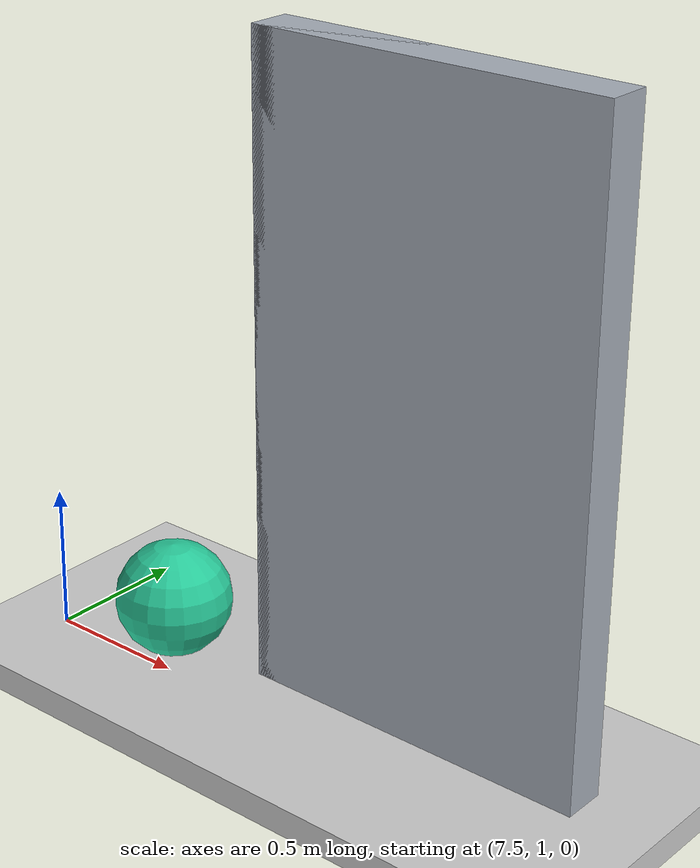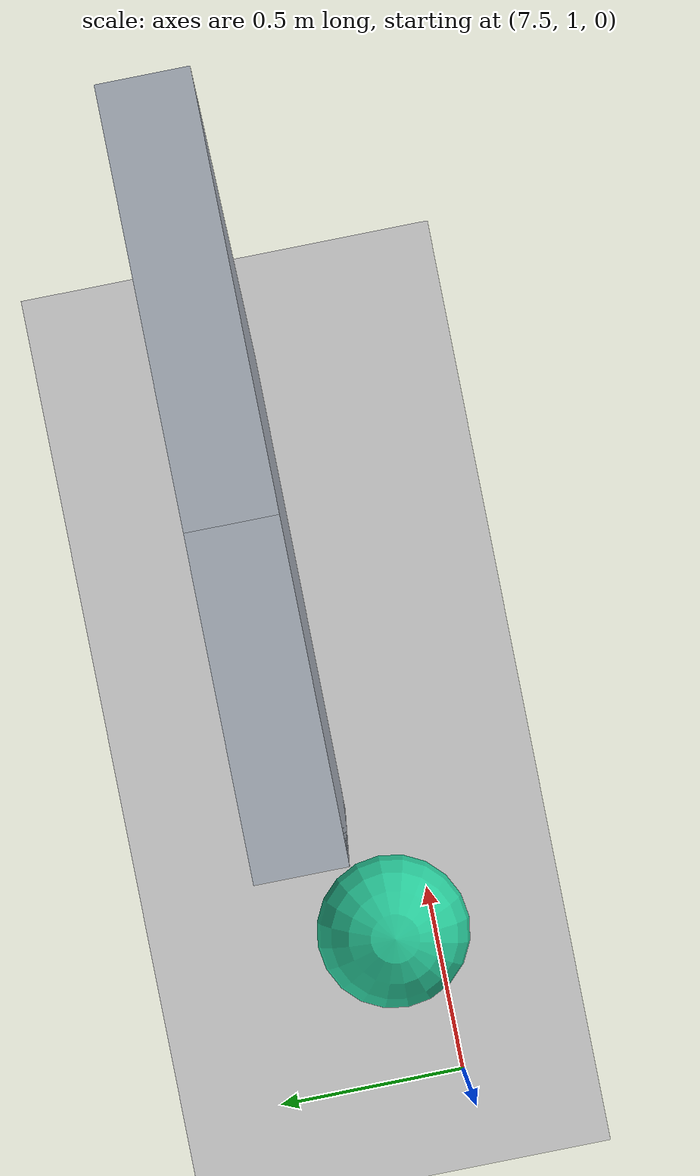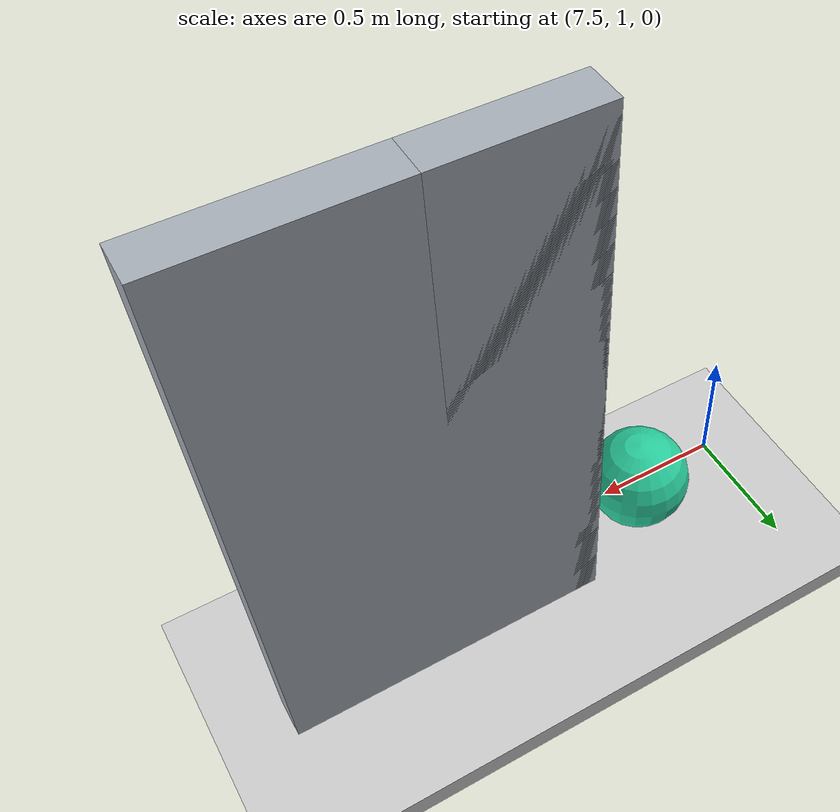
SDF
<sdf version="1.9">
 <world name="default">
  <model name="ground_plane">
   <static>true</static>
   <pose>4.75 0 -0.05 0 0 0</pose>
   <link name="body">
    <collision name="collision"><geometry><box><size>13.5 12 0.1</size></box></geometry></collision>
    <visual name="visual">
     <geometry><box><size>13.5 12 0.1</size></box></geometry>
     <material><ambient>0.8 0.8 0.8 1</ambient><diffuse>0.8 0.8 0.8 1</diffuse></material>
    </visual>
   </link>
  </model>
  <model name="jamb_1_2_1">
   <static>true</static>
   <pose>8.525 1.25 1.1 0 0 0</pose>
   <link name="body">
    <collision name="collision"><geometry><box><size>0.55 0.15 2.2</size></box></geometry></collision>
    <visual name="visual">
     <geometry><box><size>0.55 0.15 2.2</size></box></geometry>
     <material><ambient>0.65 0.68 0.72 1</ambient><diffuse>0.65 0.68 0.72 1</diffuse></material>
    </visual>
   </link>
  </model>
  <model name="hall_end_1">
   <static>true</static>
   <pose>8.875 1.25 1.1 0 0 0</pose>
   <link name="body">
    <collision name="collision"><geometry><box><size>1.25 0.15 2.2</size></box></geometry></collision>
    <visual name="visual">
     <geometry><box><size>1.25 0.15 2.2</size></box></geometry>
     <material><ambient>0.65 0.68 0.72 1</ambient><diffuse>0.65 0.68 0.72 1</diffuse></material>
    </visual>
   </link>
  </model>
  <model name="expansion_diagnostic_sphere_r3geo_base_r005_left_2_entrance">
   <static>true</static>
   <pose>7.922294043471374 1.1130796103084064 0.2 0 0 0</pose>
   <link name="visual_only">
    <visual name="nonlandmark_sphere">
     <geometry><sphere><radius>.20</radius></sphere></geometry>
     <material><ambient>0.16 0.8 0.61 1</ambient><diffuse>0.16 0.8 0.61 1</diffuse></material>
     <cast_shadows>false</cast_shadows>
    </visual>
   </link>
  </model>
 </world>
</sdf>
